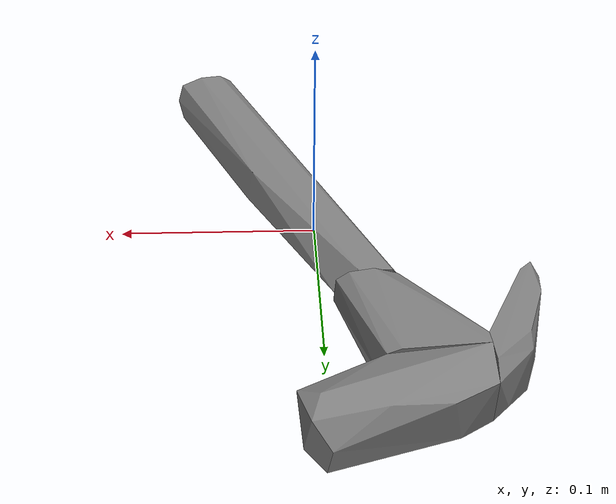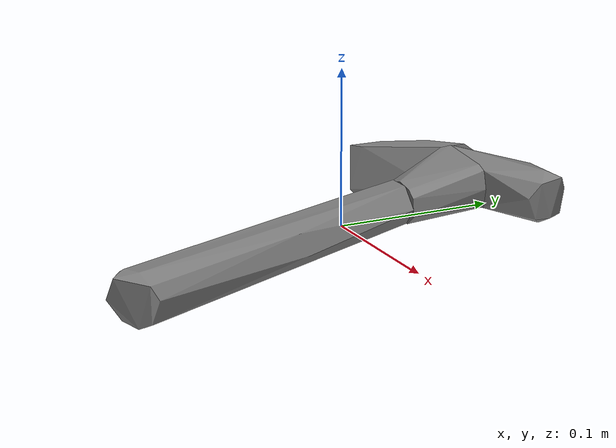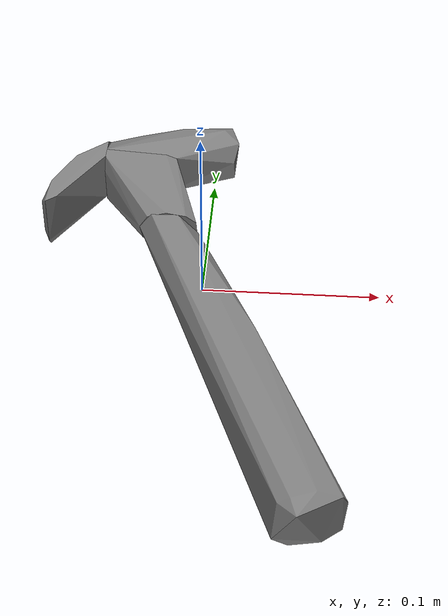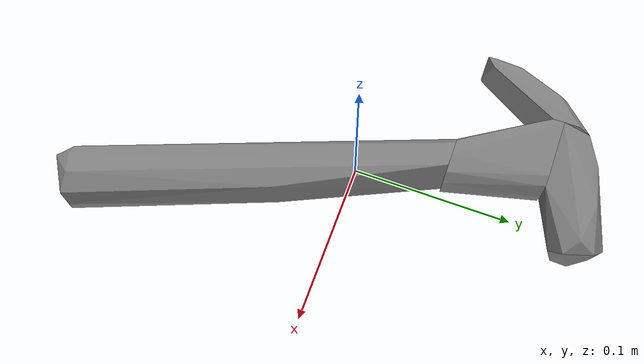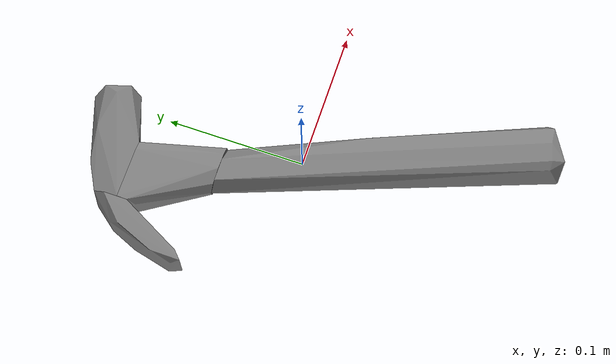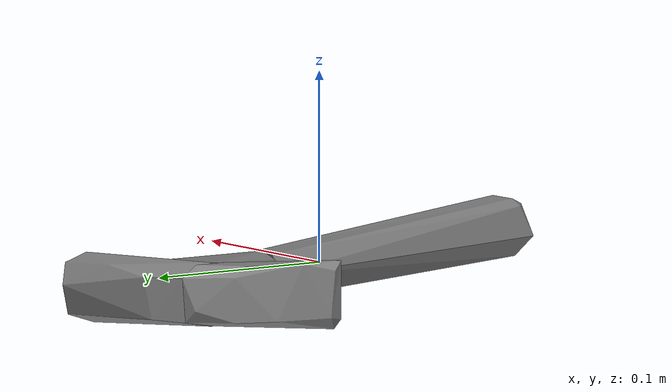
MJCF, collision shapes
<mujoco model="hammer">
  <compiler angle="radian" />

  <asset>
    <mesh name="hammer_visual_mesh" file="hammer/textured.obj" />
    <mesh name="hammer_collision_mesh_0" file="hammer/textured_coacd_0.stl" />
    <mesh name="hammer_collision_mesh_1" file="hammer/textured_coacd_1.stl" />
    <mesh name="hammer_collision_mesh_2" file="hammer/textured_coacd_2.stl" />
    <mesh name="hammer_collision_mesh_3" file="hammer/textured_coacd_3.stl" />
    <texture name="hammer_texture" type="2d" file="hammer/texture_map.png" />
    <material name="hammer_material" texture="hammer_texture" />
  </asset>

  <worldbody>
    <body name="hammer" pos="0 0 0" euler="0 0 0">
      <freejoint name="hammer_joint" />
      <geom name="hammer_visual_geom" type="mesh" mesh="hammer_visual_mesh" material="hammer_material" pos="0.028570860769310643 0.012672673714671625 -0.01565348414608536" euler="0 0 0" contype="0" conaffinity="0" group="0" />
      <geom name="hammer_collision_geom_0" type="mesh" mesh="hammer_collision_mesh_0" pos="0.028570860769310643 0.012672673714671625 -0.01565348414608536" euler="0 0 0" contype="1" conaffinity="1" group="3" />
      <geom name="hammer_collision_geom_1" type="mesh" mesh="hammer_collision_mesh_1" pos="0.028570860769310643 0.012672673714671625 -0.01565348414608536" euler="0 0 0" contype="1" conaffinity="1" group="3" />
      <geom name="hammer_collision_geom_2" type="mesh" mesh="hammer_collision_mesh_2" pos="0.028570860769310643 0.012672673714671625 -0.01565348414608536" euler="0 0 0" contype="1" conaffinity="1" group="3" />
      <geom name="hammer_collision_geom_3" type="mesh" mesh="hammer_collision_mesh_3" pos="0.028570860769310643 0.012672673714671625 -0.01565348414608536" euler="0 0 0" contype="1" conaffinity="1" group="3" />
      <inertial pos="0 0 0" euler="0 0 0" mass="0.665" diaginertia="0.001 0.001 0.001" />
    </body>
  </worldbody>
</mujoco>
